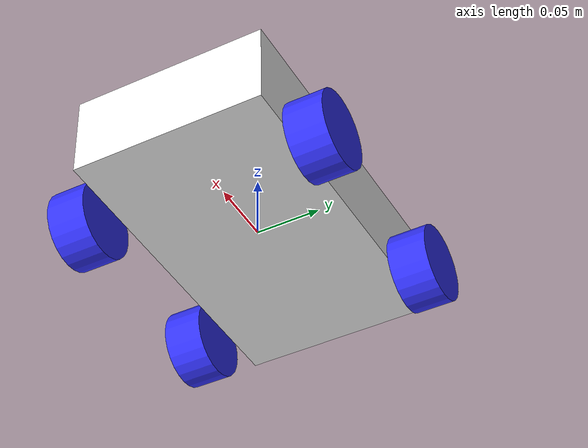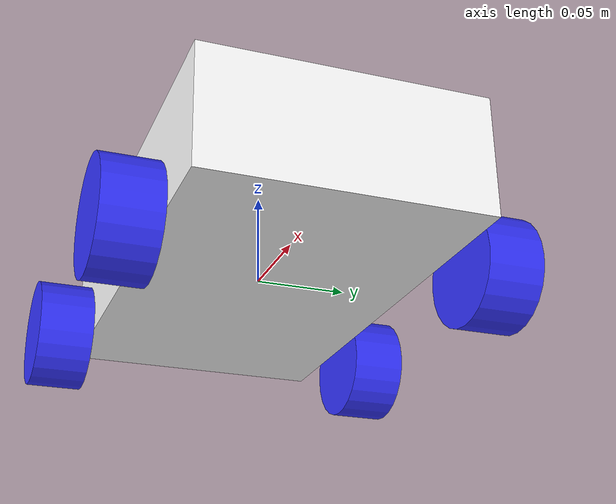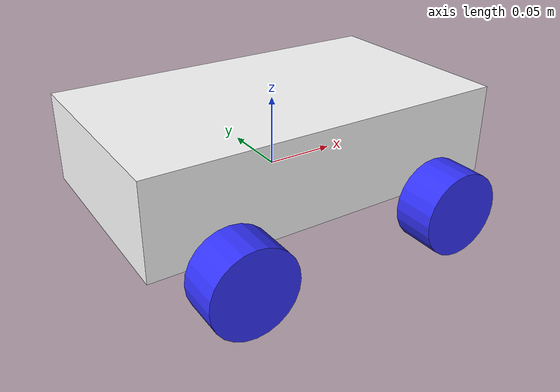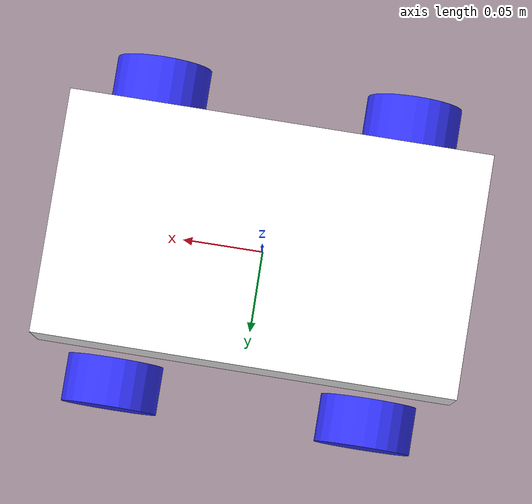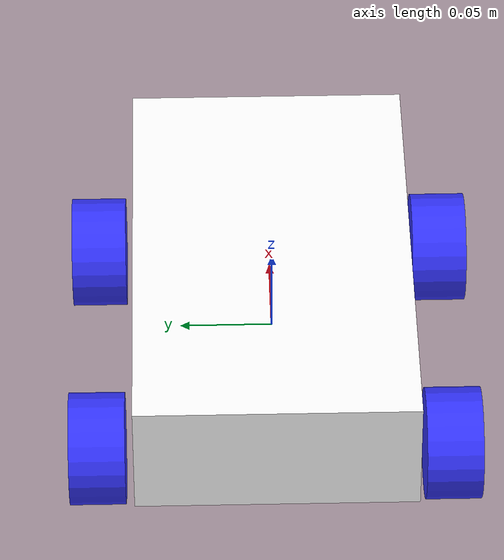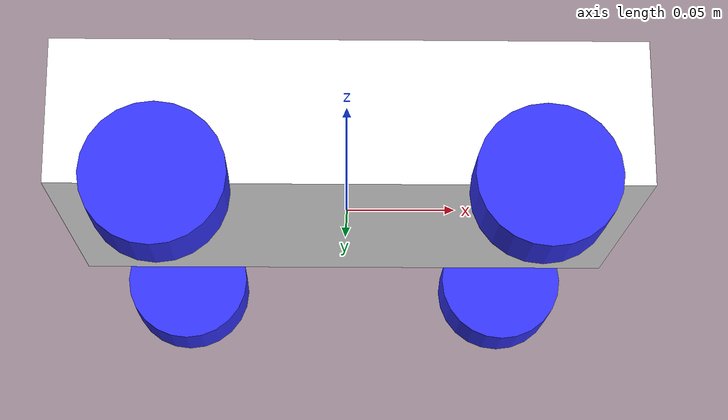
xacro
<?xml version="1.0"?>
<robot xmlns:xacro="http://www.ros.org/wiki/xacro" >

    <xacro:include filename="inertial_macros.xacro"/>

    <material name="white">
        <color rgba="1 1 1 1" />
    </material>

    <material name="orange">
        <color rgba="1 0.3 0.1 1"/>
    </material>

    <material name="blue">
        <color rgba="0.2 0.2 1 1"/>
    </material>

    <material name="black">
        <color rgba="0 0 0 1"/>
    </material>

    <!-- BASE LINK -->

    <link name="base_link">

    </link>

    <!-- CHASSIS LINK -->

    <joint name="chassis_joint" type="fixed">
        <parent link="base_link"/>
        <child link="chassis"/>
        <origin xyz="0 0 0.023" rpy="0 0 0"/>
    </joint>

    <link name="chassis">
        <visual>
            <geometry>
                <box size="0.26 0.15 0.065"/>
            </geometry>
            <material name="white"/>
        </visual>
         <collision>
            <origin xyz="0 0 0.0325"/>
            <geometry>
                <box size="0.26 0.15 0.065"/>
            </geometry>
        </collision>
       <xacro:inertial_box mass="0.5" x="0.26" y="0.15" z="0.065">
            <origin xyz="0 0 0.0325" rpy="0 0 0"/>
        </xacro:inertial_box>
    </link>

    <gazebo reference="chassis">
        <material>Gazebo/White</material>
    </gazebo>

    <!-- LEFT WHEEL LINK -->

    <joint name="left_wheel_joint" type="continuous">
        <parent link="base_link"/>
        <child link="left_wheel"/>
        <origin xyz="-0.08 -0.095 -0.015" rpy="-${pi/2} 0 0" />
        <axis xyz="0 0 1"/>
    </joint>

    <link name="left_wheel">
        <visual>
            <geometry>
                <cylinder radius="0.03" length="0.03"/>
            </geometry>
            <material name="blue"/>
        </visual>
        <collision>
            <geometry>
                <cylinder radius="0.03" length="0.03"/>
            </geometry>
        </collision>
        <xacro:inertial_cylinder mass="0.5" length="0.03" radius="0.03">
            <origin xyz="-0.08 -0.095 -0.015" rpy="0 0 0"/>
        </xacro:inertial_cylinder>
    </link>

    <gazebo reference="left_wheel">
        <material>Gazebo/Blue</material>
    </gazebo>

    <!-- RIGHT WHEEL LINK -->

    <joint name="right_wheel_joint" type="continuous">
        <parent link="base_link"/>
        <child link="right_wheel"/>
        <origin xyz="-0.08 0.095 -0.015" rpy="${pi/2} 0 0" />
        <axis xyz="0 0 -1"/>
    </joint>

    <link name="right_wheel">
        <visual>
            <geometry>
                <cylinder radius="0.03" length="0.03"/>
            </geometry>
            <material name="blue"/>
        </visual>
        <collision>
            <geometry>
                <cylinder radius="0.03" length="0.03"/>
            </geometry>
        </collision>
        <xacro:inertial_cylinder mass="0.5" length="0.03" radius="0.03">
            <origin xyz="-0.08 0.095 -0.015" rpy="0 0 0"/>
        </xacro:inertial_cylinder>
    </link>

    <gazebo reference="right_wheel">
        <material>Gazebo/Blue</material>
    </gazebo>

   <!-- RIGHT FRONT WHEEL LINK -->

    <joint name="right_front_wheel_joint" type="continuous">
        <parent link="base_link"/>
        <child link="right_front_wheel"/>
        <origin xyz="0.08 0.095 -0.015" rpy="${pi/2} 0 0" />
        <axis xyz="0 0 -1"/>
    </joint>

    <link name="right_front_wheel">
        <visual>
            <geometry>
                <cylinder radius="0.03" length="0.03"/>
            </geometry>
            <material name="blue"/>
        </visual>
        <collision>
            <geometry>
                <cylinder radius="0.03" length="0.03"/>
            </geometry>
        </collision>
        <xacro:inertial_cylinder mass="0.5" length="0.03" radius="0.03">
            <origin xyz="0.08 0.095 -0.015" rpy="0 0 0"/>
        </xacro:inertial_cylinder>
    </link>

    <gazebo reference="right_front_wheel">
        <material>Gazebo/Blue</material>
    </gazebo>

   <!-- LEFT FRONT WHEEL LINK -->

    <joint name="left_front_wheel_joint" type="continuous">
        <parent link="base_link"/>
        <child link="left_front_wheel"/>
        <origin xyz="0.08 -0.095 -0.015" rpy="-${pi/2} 0 0" />
        <axis xyz="0 0 1"/>
    </joint>

    <link name="left_front_wheel">
        <visual>
            <geometry>
                <cylinder radius="0.03" length="0.03"/>
            </geometry>
            <material name="blue"/>
        </visual>
        <collision>
            <geometry>
                <cylinder radius="0.03" length="0.03"/>
            </geometry>
        </collision>
        <xacro:inertial_cylinder mass="0.5" length="0.03" radius="0.03">
            <origin xyz="0.08 -0.095 -0.015" rpy="0 0 0"/>
        </xacro:inertial_cylinder>
    </link>

    <gazebo reference="left_front_wheel">
        <material>Gazebo/Blue</material>
    </gazebo>

<!-- IMU LINK -->

    <joint name="imu_joint" type="fixed">
        <parent link="base_link"/>
        <child link="imu_link"/>
        <origin xyz="0 0 0" rpy="0 0 0" />
    </joint>

        <link name="imu_link">
        <visual>
            <geometry>
                <box size="0.01 0.01 0.01"/>
            </geometry>
            <material name="white"/>
        </visual>
        <collision>
            <geometry>
                <box size="0.01 0.01 0.01"/>
            </geometry>
        </collision>
       <xacro:inertial_box mass="0.5" x="0.01" y="0.01" z="0.01">
            <origin xyz="0 0 0" rpy="0 0 0"/>
        </xacro:inertial_box>
    </link>
</robot>
